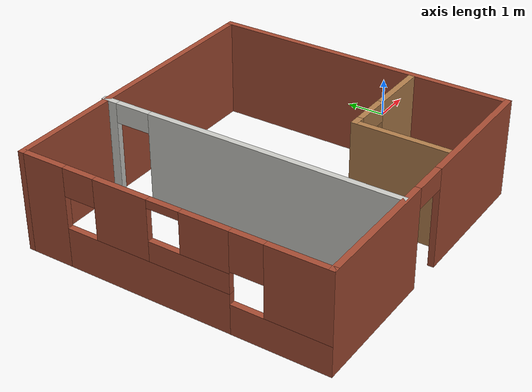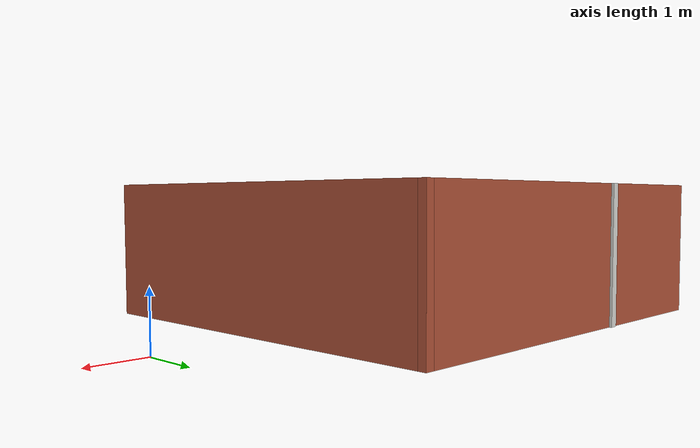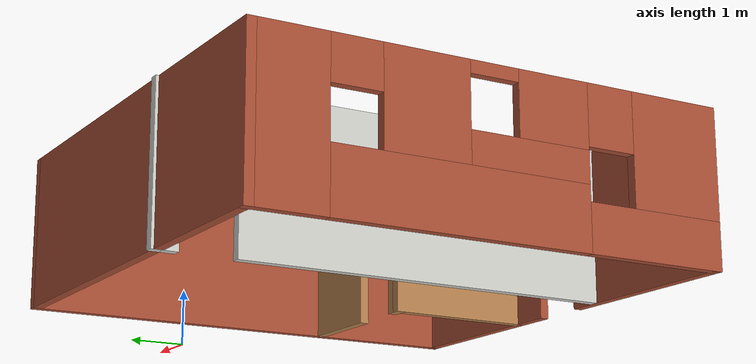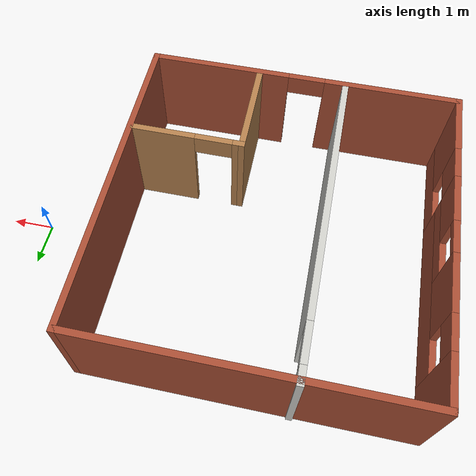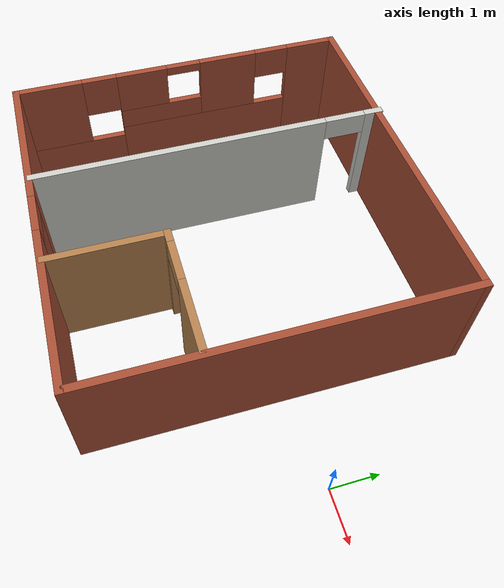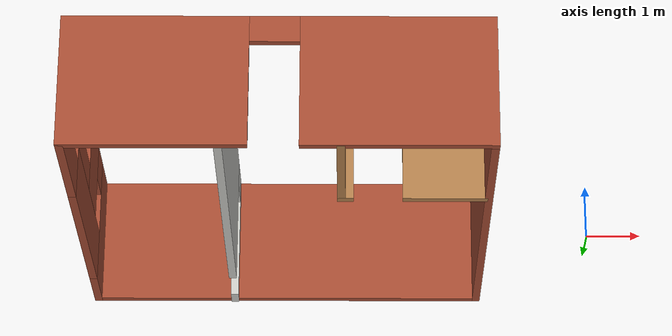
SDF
<?xml version='1.0'?>
<sdf version='1.6'>
  <model name='Building'>
    <pose frame=''>-4.80546 -0.326766 0 0 -0 0</pose>
    <link name='Wall_13'>
      <pose frame=''>-4.73046 -0.023766 0 0 -0 -1.5708</pose>
      <visual name='Wall_13_Visual_0'>
        <pose frame=''>-3.26262 0 1.25 0 -0 0</pose>
        <geometry>
          <box>
            <size>1.22475 0.15 2.5</size>
          </box>
        </geometry>
        <material>
          <script>
            <uri>file://media/materials/scripts/gazebo.material</uri>
            <name>Gazebo/Bricks</name>
          </script>
          <ambient>1 1 1 1</ambient>
        </material>
        <meta>
          <layer>0</layer>
        </meta>
      </visual>
      <collision name='Wall_13_Collision_0'>
        <geometry>
          <box>
            <size>1.22475 0.15 2.5</size>
          </box>
        </geometry>
        <pose frame=''>-3.26262 0 1.25 0 -0 0</pose>
      </collision>
      <visual name='Wall_13_Visual_1'>
        <pose frame=''>-0.568495 0 0.5 0 -0 0</pose>
        <geometry>
          <box>
            <size>4.16351 0.15 1</size>
          </box>
        </geometry>
        <material>
          <script>
            <uri>file://media/materials/scripts/gazebo.material</uri>
            <name>Gazebo/Bricks</name>
          </script>
          <ambient>1 1 1 1</ambient>
        </material>
        <meta>
          <layer>0</layer>
        </meta>
      </visual>
      <collision name='Wall_13_Collision_1'>
        <geometry>
          <box>
            <size>4.16351 0.15 1</size>
          </box>
        </geometry>
        <pose frame=''>-0.568495 0 0.5 0 -0 0</pose>
      </collision>
      <visual name='Wall_13_Visual_2'>
        <pose frame=''>2.69413 0 0.375 0 -0 0</pose>
        <geometry>
          <box>
            <size>2.36174 0.15 0.75</size>
          </box>
        </geometry>
        <material>
          <script>
            <uri>file://media/materials/scripts/gazebo.material</uri>
            <name>Gazebo/Bricks</name>
          </script>
          <ambient>1 1 1 1</ambient>
        </material>
        <meta>
          <layer>0</layer>
        </meta>
      </visual>
      <collision name='Wall_13_Collision_2'>
        <geometry>
          <box>
            <size>2.36174 0.15 0.75</size>
          </box>
        </geometry>
        <pose frame=''>2.69413 0 0.375 0 -0 0</pose>
      </collision>
      <visual name='Wall_13_Visual_3'>
        <pose frame=''>3.09413 0 1.625 0 -0 0</pose>
        <geometry>
          <box>
            <size>1.56174 0.15 1.75</size>
          </box>
        </geometry>
        <material>
          <script>
            <uri>file://media/materials/scripts/gazebo.material</uri>
            <name>Gazebo/Bricks</name>
          </script>
          <ambient>1 1 1 1</ambient>
        </material>
        <meta>
          <layer>0</layer>
        </meta>
      </visual>
      <collision name='Wall_13_Collision_3'>
        <geometry>
          <box>
            <size>1.56174 0.15 1.75</size>
          </box>
        </geometry>
        <pose frame=''>3.09413 0 1.625 0 -0 0</pose>
      </collision>
      <visual name='Wall_13_Visual_4'>
        <pose frame=''>-1.16311 0 1.75 0 -0 0</pose>
        <geometry>
          <box>
            <size>1.37428 0.15 1.5</size>
          </box>
        </geometry>
        <material>
          <script>
            <uri>file://media/materials/scripts/gazebo.material</uri>
            <name>Gazebo/Bricks</name>
          </script>
          <ambient>1 1 1 1</ambient>
        </material>
        <meta>
          <layer>0</layer>
        </meta>
      </visual>
      <collision name='Wall_13_Collision_4'>
        <geometry>
          <box>
            <size>1.37428 0.15 1.5</size>
          </box>
        </geometry>
        <pose frame=''>-1.16311 0 1.75 0 -0 0</pose>
      </collision>
      <visual name='Wall_13_Visual_5'>
        <pose frame=''>0.518644 0 1.25 0 -0 0</pose>
        <geometry>
          <box>
            <size>1.98923 0.15 0.5</size>
          </box>
        </geometry>
        <material>
          <script>
            <uri>file://media/materials/scripts/gazebo.material</uri>
            <name>Gazebo/Bricks</name>
          </script>
          <ambient>1 1 1 1</ambient>
        </material>
        <meta>
          <layer>0</layer>
        </meta>
      </visual>
      <collision name='Wall_13_Collision_5'>
        <geometry>
          <box>
            <size>1.98923 0.15 0.5</size>
          </box>
        </geometry>
        <pose frame=''>0.518644 0 1.25 0 -0 0</pose>
      </collision>
      <visual name='Wall_13_Visual_6'>
        <pose frame=''>0.918644 0 2 0 -0 0</pose>
        <geometry>
          <box>
            <size>1.18923 0.15 1</size>
          </box>
        </geometry>
        <material>
          <script>
            <uri>file://media/materials/scripts/gazebo.material</uri>
            <name>Gazebo/Bricks</name>
          </script>
          <ambient>1 1 1 1</ambient>
        </material>
        <meta>
          <layer>0</layer>
        </meta>
      </visual>
      <collision name='Wall_13_Collision_6'>
        <geometry>
          <box>
            <size>1.18923 0.15 1</size>
          </box>
        </geometry>
        <pose frame=''>0.918644 0 2 0 -0 0</pose>
      </collision>
      <visual name='Wall_13_Visual_7'>
        <pose frame=''>1.91326 0 2.025 0 -0 0</pose>
        <geometry>
          <box>
            <size>0.8 0.15 0.95</size>
          </box>
        </geometry>
        <material>
          <script>
            <uri>file://media/materials/scripts/gazebo.material</uri>
            <name>Gazebo/Bricks</name>
          </script>
          <ambient>1 1 1 1</ambient>
        </material>
        <meta>
          <layer>0</layer>
        </meta>
      </visual>
      <collision name='Wall_13_Collision_7'>
        <geometry>
          <box>
            <size>0.8 0.15 0.95</size>
          </box>
        </geometry>
        <pose frame=''>1.91326 0 2.025 0 -0 0</pose>
      </collision>
      <visual name='Wall_13_Visual_8'>
        <pose frame=''>-2.25025 0 2.15 0 -0 0</pose>
        <geometry>
          <box>
            <size>0.8 0.15 0.7</size>
          </box>
        </geometry>
        <material>
          <script>
            <uri>file://media/materials/scripts/gazebo.material</uri>
            <name>Gazebo/Bricks</name>
          </script>
          <ambient>1 1 1 1</ambient>
        </material>
        <meta>
          <layer>0</layer>
        </meta>
      </visual>
      <collision name='Wall_13_Collision_8'>
        <geometry>
          <box>
            <size>0.8 0.15 0.7</size>
          </box>
        </geometry>
        <pose frame=''>-2.25025 0 2.15 0 -0 0</pose>
      </collision>
      <visual name='Wall_13_Visual_9'>
        <pose frame=''>-0.075972 0 2.4 0 -0 0</pose>
        <geometry>
          <box>
            <size>0.8 0.15 0.2</size>
          </box>
        </geometry>
        <material>
          <script>
            <uri>file://media/materials/scripts/gazebo.material</uri>
            <name>Gazebo/Bricks</name>
          </script>
          <ambient>1 1 1 1</ambient>
        </material>
        <meta>
          <layer>0</layer>
        </meta>
      </visual>
      <collision name='Wall_13_Collision_9'>
        <geometry>
          <box>
            <size>0.8 0.15 0.2</size>
          </box>
        </geometry>
        <pose frame=''>-0.075972 0 2.4 0 -0 0</pose>
      </collision>
    </link>
    <link name='Wall_14'>
      <pose frame=''>-0.930463 -3.82377 0 0 -0 0</pose>
      <visual name='Wall_14_Visual_0'>
        <pose frame=''>-2.20049 0 1.25 0 -0 0</pose>
        <geometry>
          <box>
            <size>3.34903 0.15 2.5</size>
          </box>
        </geometry>
        <material>
          <script>
            <uri>file://media/materials/scripts/gazebo.material</uri>
            <name>Gazebo/Bricks</name>
          </script>
          <ambient>1 1 1 1</ambient>
        </material>
        <meta>
          <layer>0</layer>
        </meta>
      </visual>
      <collision name='Wall_14_Collision_0'>
        <geometry>
          <box>
            <size>3.34903 0.15 2.5</size>
          </box>
        </geometry>
        <pose frame=''>-2.20049 0 1.25 0 -0 0</pose>
      </collision>
      <visual name='Wall_14_Visual_1'>
        <pose frame=''>2.12451 0 1.25 0 -0 0</pose>
        <geometry>
          <box>
            <size>3.50097 0.15 2.5</size>
          </box>
        </geometry>
        <material>
          <script>
            <uri>file://media/materials/scripts/gazebo.material</uri>
            <name>Gazebo/Bricks</name>
          </script>
          <ambient>1 1 1 1</ambient>
        </material>
        <meta>
          <layer>0</layer>
        </meta>
      </visual>
      <collision name='Wall_14_Collision_1'>
        <geometry>
          <box>
            <size>3.50097 0.15 2.5</size>
          </box>
        </geometry>
        <pose frame=''>2.12451 0 1.25 0 -0 0</pose>
      </collision>
      <visual name='Wall_14_Visual_2'>
        <pose frame=''>-0.075972 0 2.25 0 -0 0</pose>
        <geometry>
          <box>
            <size>0.9 0.15 0.5</size>
          </box>
        </geometry>
        <material>
          <script>
            <uri>file://media/materials/scripts/gazebo.material</uri>
            <name>Gazebo/Bricks</name>
          </script>
          <ambient>1 1 1 1</ambient>
        </material>
        <meta>
          <layer>0</layer>
        </meta>
      </visual>
      <collision name='Wall_14_Collision_2'>
        <geometry>
          <box>
            <size>0.9 0.15 0.5</size>
          </box>
        </geometry>
        <pose frame=''>-0.075972 0 2.25 0 -0 0</pose>
      </collision>
    </link>
    <link name='Wall_15'>
      <collision name='Wall_15_Collision'>
        <geometry>
          <box>
            <size>7.75 0.15 2.5</size>
          </box>
        </geometry>
        <pose frame=''>0 0 1.25 0 -0 0</pose>
      </collision>
      <visual name='Wall_15_Visual'>
        <pose frame=''>0 0 1.25 0 -0 0</pose>
        <geometry>
          <box>
            <size>7.75 0.15 2.5</size>
          </box>
        </geometry>
        <material>
          <script>
            <uri>file://media/materials/scripts/gazebo.material</uri>
            <name>Gazebo/Bricks</name>
          </script>
          <ambient>1 1 1 1</ambient>
        </material>
        <meta>
          <layer>0</layer>
        </meta>
      </visual>
      <pose frame=''>2.86954 -0.023766 0 0 -0 1.5708</pose>
    </link>
    <link name='Wall_16'>
      <collision name='Wall_16_Collision'>
        <geometry>
          <box>
            <size>7.75 0.15 2.5</size>
          </box>
        </geometry>
        <pose frame=''>0 0 1.25 0 -0 0</pose>
      </collision>
      <visual name='Wall_16_Visual'>
        <pose frame=''>0 0 1.25 0 -0 0</pose>
        <geometry>
          <box>
            <size>7.75 0.15 2.5</size>
          </box>
        </geometry>
        <material>
          <script>
            <uri>file://media/materials/scripts/gazebo.material</uri>
            <name>Gazebo/Bricks</name>
          </script>
          <ambient>1 1 1 1</ambient>
        </material>
        <meta>
          <layer>0</layer>
        </meta>
      </visual>
      <pose frame=''>-0.930463 3.77623 0 0 -0 3.14159</pose>
    </link>
    <link name='Wall_18'>
      <pose frame=''>-1.97754 0.023766 0 0 -0 1.5708</pose>
      <visual name='Wall_18_Visual_0'>
        <pose frame=''>-0.662301 0 1.25 0 -0 0</pose>
        <geometry>
          <box>
            <size>6.4254 0.15 2.5</size>
          </box>
        </geometry>
        <material>
          <script>
            <uri>file://media/materials/scripts/gazebo.material</uri>
            <name>Gazebo/CeilingTiled</name>
          </script>
          <ambient>0.996078 0.47451 0.0196078 1</ambient>
        </material>
        <meta>
          <layer>0</layer>
        </meta>
      </visual>
      <collision name='Wall_18_Collision_0'>
        <geometry>
          <box>
            <size>6.4254 0.15 2.5</size>
          </box>
        </geometry>
        <pose frame=''>-0.662301 0 1.25 0 -0 0</pose>
      </collision>
      <visual name='Wall_18_Visual_1'>
        <pose frame=''>3.6627 0 1.25 0 -0 0</pose>
        <geometry>
          <box>
            <size>0.424601 0.15 2.5</size>
          </box>
        </geometry>
        <material>
          <script>
            <uri>file://media/materials/scripts/gazebo.material</uri>
            <name>Gazebo/CeilingTiled</name>
          </script>
          <ambient>0.996078 0.47451 0.0196078 1</ambient>
        </material>
        <meta>
          <layer>0</layer>
        </meta>
      </visual>
      <collision name='Wall_18_Collision_1'>
        <geometry>
          <box>
            <size>0.424601 0.15 2.5</size>
          </box>
        </geometry>
        <pose frame=''>3.6627 0 1.25 0 -0 0</pose>
      </collision>
      <visual name='Wall_18_Visual_2'>
        <pose frame=''>3.0004 0 2.25 0 -0 0</pose>
        <geometry>
          <box>
            <size>0.9 0.15 0.5</size>
          </box>
        </geometry>
        <material>
          <script>
            <uri>file://media/materials/scripts/gazebo.material</uri>
            <name>Gazebo/CeilingTiled</name>
          </script>
          <ambient>0.996078 0.47451 0.0196078 1</ambient>
        </material>
        <meta>
          <layer>0</layer>
        </meta>
      </visual>
      <collision name='Wall_18_Collision_2'>
        <geometry>
          <box>
            <size>0.9 0.15 0.5</size>
          </box>
        </geometry>
        <pose frame=''>3.0004 0 2.25 0 -0 0</pose>
      </collision>
    </link>
    <link name='Wall_20'>
      <collision name='Wall_20_Collision'>
        <geometry>
          <box>
            <size>2.5 0.15 2.5</size>
          </box>
        </geometry>
        <pose frame=''>0 0 1.25 0 -0 0</pose>
      </collision>
      <visual name='Wall_20_Visual'>
        <pose frame=''>0 0 1.25 0 -0 0</pose>
        <geometry>
          <box>
            <size>2.5 0.15 2.5</size>
          </box>
        </geometry>
        <material>
          <script>
            <uri>file://media/materials/scripts/gazebo.material</uri>
            <name>Gazebo/Wood</name>
          </script>
          <ambient>1 1 1 1</ambient>
        </material>
        <meta>
          <layer>0</layer>
        </meta>
      </visual>
      <pose frame=''>0.173226 -2.61247 0 0 -0 1.5708</pose>
    </link>
    <link name='Wall_21'>
      <pose frame=''>1.47323 -1.43748 0 0 -0 0</pose>
      <visual name='Wall_21_Visual_0'>
        <pose frame=''>-1.22711 0 1.25 0 -0 0</pose>
        <geometry>
          <box>
            <size>0.295788 0.15 2.5</size>
          </box>
        </geometry>
        <material>
          <script>
            <uri>file://media/materials/scripts/gazebo.material</uri>
            <name>Gazebo/Wood</name>
          </script>
          <ambient>1 1 1 1</ambient>
        </material>
        <meta>
          <layer>0</layer>
        </meta>
      </visual>
      <collision name='Wall_21_Collision_0'>
        <geometry>
          <box>
            <size>0.295788 0.15 2.5</size>
          </box>
        </geometry>
        <pose frame=''>-1.22711 0 1.25 0 -0 0</pose>
      </collision>
      <visual name='Wall_21_Visual_1'>
        <pose frame=''>0.597894 0 1.25 0 -0 0</pose>
        <geometry>
          <box>
            <size>1.55421 0.15 2.5</size>
          </box>
        </geometry>
        <material>
          <script>
            <uri>file://media/materials/scripts/gazebo.material</uri>
            <name>Gazebo/Wood</name>
          </script>
          <ambient>1 1 1 1</ambient>
        </material>
        <meta>
          <layer>0</layer>
        </meta>
      </visual>
      <collision name='Wall_21_Collision_1'>
        <geometry>
          <box>
            <size>1.55421 0.15 2.5</size>
          </box>
        </geometry>
        <pose frame=''>0.597894 0 1.25 0 -0 0</pose>
      </collision>
      <visual name='Wall_21_Visual_2'>
        <pose frame=''>-0.629212 0 2.25 0 -0 0</pose>
        <geometry>
          <box>
            <size>0.9 0.15 0.5</size>
          </box>
        </geometry>
        <material>
          <script>
            <uri>file://media/materials/scripts/gazebo.material</uri>
            <name>Gazebo/Wood</name>
          </script>
          <ambient>1 1 1 1</ambient>
        </material>
        <meta>
          <layer>0</layer>
        </meta>
      </visual>
      <collision name='Wall_21_Collision_2'>
        <geometry>
          <box>
            <size>0.9 0.15 0.5</size>
          </box>
        </geometry>
        <pose frame=''>-0.629212 0 2.25 0 -0 0</pose>
      </collision>
    </link>
    <static>1</static>
  </model>
</sdf>
